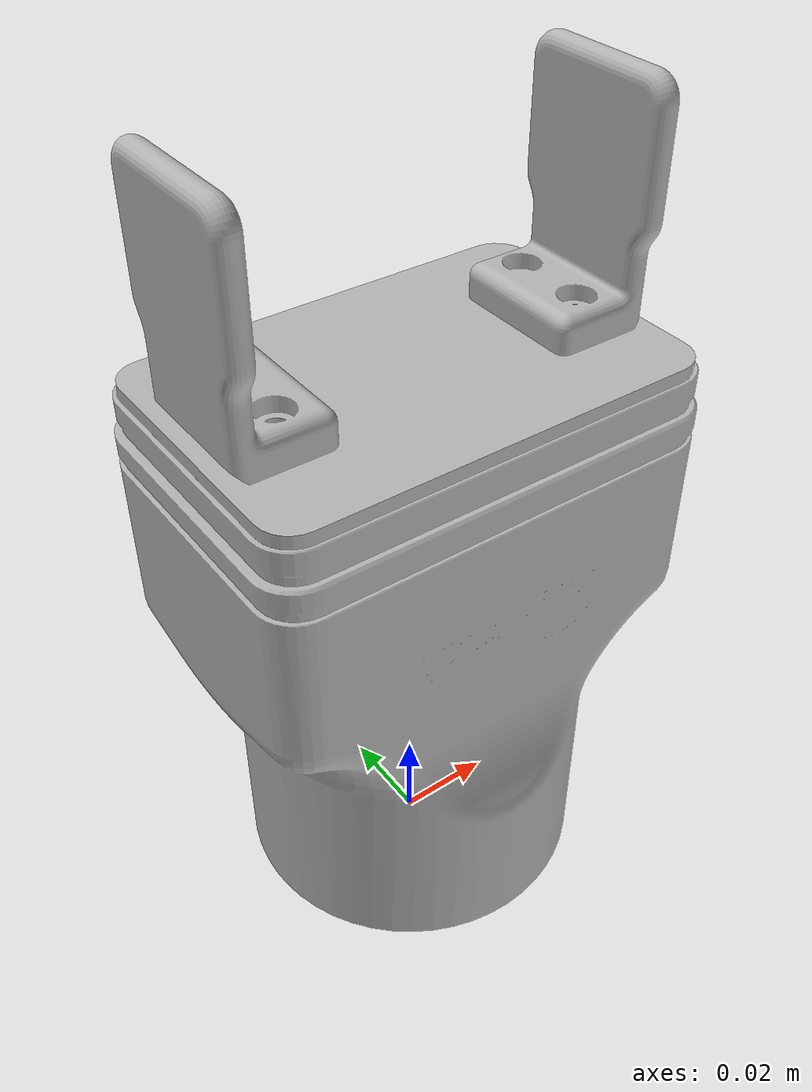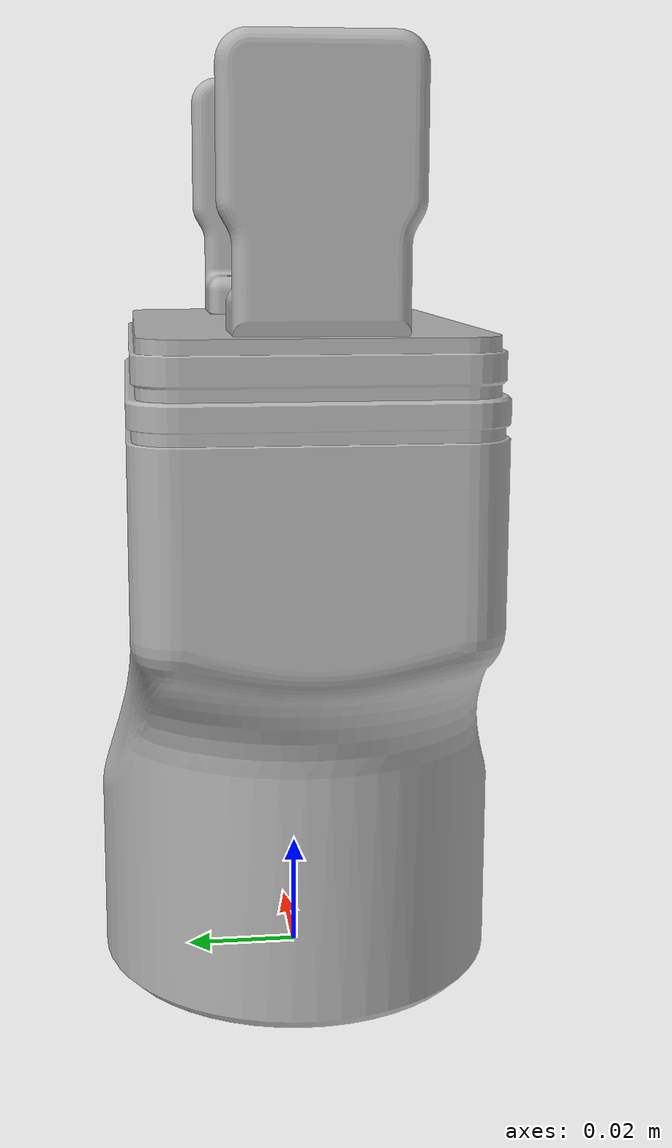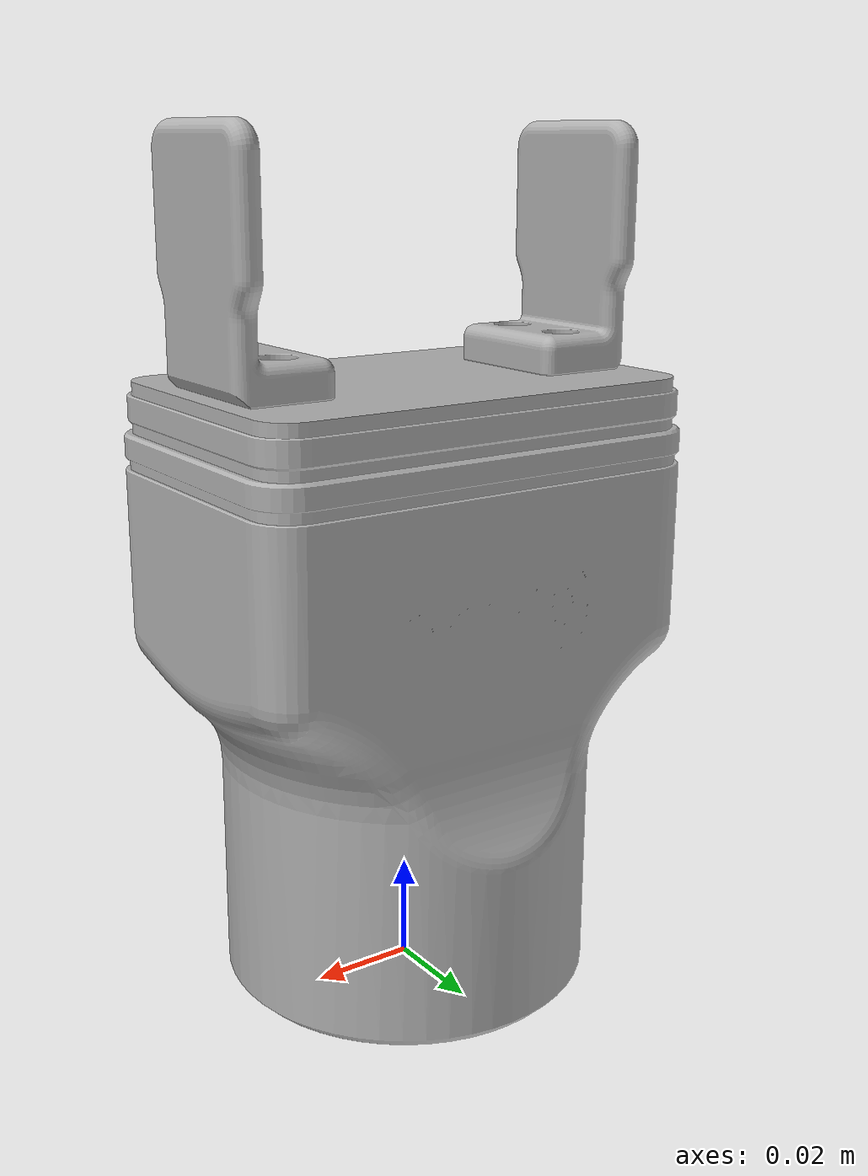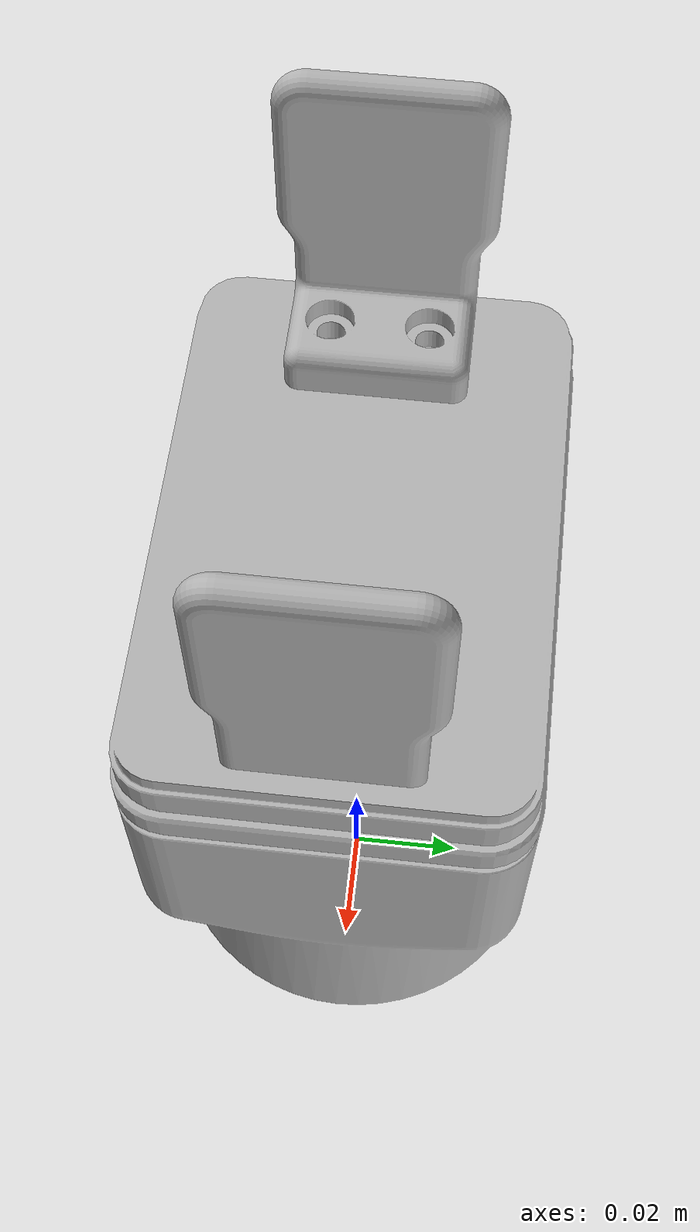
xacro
<?xml version="1.0" ?>
<robot name="2fg7_outwards" xmlns:xacro="http://www.ros.org/wiki/xacro">
  <xacro:include filename="$(find onrobot_2fg7_description)/urdf/onrobot_2fg7.xacro" />
 <xacro:onrobot_2fg7_gripper prefix="" finger_configuration="outwards"/>

  <link name="world" />

  <joint name="world_joint" type="fixed">
    <parent link="world" />
    <child link = "base_link" />
    <origin xyz="0.0 0.0 0.0" rpy="0.0 0.0 0.0" />
  </joint>
  <xacro:include filename="$(find onrobot_2fg7_description)/urdf/gzplugin_grasp_fix.urdf.xacro"/>
  <xacro:include filename="$(find onrobot_2fg7_description)/urdf/mimic_fix.urdf.xacro"/>
  <xacro:gzplugin_grasp_fix/>
  <xacro:mimic_fix/>

</robot>

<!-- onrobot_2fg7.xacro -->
<robot name="2fg7_outwards" xmlns:xacro="http://www.ros.org/wiki/xacro">

<xacro:include filename="$(find onrobot_2fg7_description)/urdf/materials.xacro" />
<xacro:include filename="$(find onrobot_2fg7_description)/urdf/onrobot_2fg7.trans.xacro" />
<xacro:include filename="$(find onrobot_2fg7_description)/urdf/onrobot_2fg7.gazebo" />
<xacro:gripper_transmission/>
<xacro:gazebo_control is_control_on="false" />

<xacro:macro name="onrobot_2fg7_gripper" params="prefix finger_configuration=outwards">

  <xacro:property name="config" value="${finger_configuration}"/>
  <xacro:if value="${config == 'outwards'}">
    <link name="${prefix}base_link">
      <inertial>
        <origin xyz="-4.898915958379213e-05 2.84756960271082e-06 0.06811082379774974" rpy="0 0 0"/>
        <mass value="1.2646523179240972"/>
        <inertia ixx="0.001504" iyy="0.001812" izz="0.001053" ixy="-0.0" iyz="0.0" ixz="-3e-06"/>
      </inertial>
      <visual>
        <origin xyz="0 0 0" rpy="0 0 0"/>
        <geometry>
          <mesh filename="package://onrobot_2fg7_description/meshes/base_link.stl" scale="0.001 0.001 0.001"/>
        </geometry>
        <material name="silver"/>
      </visual>
      <collision>
        <origin xyz="0 0 0" rpy="0 0 0"/>
        <geometry>
          <mesh filename="package://onrobot_2fg7_description/meshes/base_link.stl" scale="0.001 0.001 0.001"/>
        </geometry>
      </collision>
    </link>

    <link name="${prefix}right_finger_link">
      <inertial>
        <origin xyz="0.017874296677847158 0.02949104051991925 0.01523421548622829" rpy="0 0 0"/>
        <mass value="0.023219383355922288"/>
        <inertia ixx="6e-06" iyy="5e-06" izz="2e-06" ixy="-0.0" iyz="-0.0" ixz="1e-06"/>
      </inertial>
      <visual>
        <origin xyz="0.054361 0.029494 -0.12005" rpy="0 0 0"/>
        <geometry>
          <mesh filename="package://onrobot_2fg7_description/meshes/right_finger_link.stl" scale="0.001 0.001 0.001"/>
        </geometry>
        <material name="silver"/>
      </visual>
      <collision name="right_finger_collision">
        <origin xyz="0.054361 0.029494 -0.12005" rpy="0 0 0"/>
        <geometry>
          <mesh filename="package://onrobot_2fg7_description/meshes/right_finger_link.stl" scale="0.001 0.001 0.001"/>
        </geometry>
      </collision>
    </link>

    <link name="${prefix}left_finger_link">
      <inertial>
        <origin xyz="0.004247703322119739 0.029496959480080673 0.015234215486237948" rpy="0 0 0"/>
        <mass value="0.023219383355922288"/>
        <inertia ixx="6e-06" iyy="5e-06" izz="2e-06" ixy="-0.0" iyz="0.0" ixz="-1e-06"/>
      </inertial>
      <visual>
        <origin xyz="-0.032239 0.029494 -0.12005" rpy="0 0 0"/>
        <geometry>
          <mesh filename="package://onrobot_2fg7_description/meshes/left_finger_link.stl" scale="0.001 0.001 0.001"/>
        </geometry>
        <material name="silver"/>
      </visual>
      <collision name="left_finger_collision">
        <origin xyz="-0.032239 0.029494 -0.12005" rpy="0 0 0"/>
        <geometry>
          <mesh filename="package://onrobot_2fg7_description/meshes/left_finger_link.stl" scale="0.001 0.001 0.001"/>
        </geometry>
      </collision>
    </link>

    <joint name="left_finger_joint" type="prismatic">
      <origin xyz="0.032239 -0.029494 0.12005" rpy="0 0 0"/>
      <parent link="${prefix}base_link"/>
      <child link="${prefix}left_finger_link"/>
      <axis xyz="-1.0 0.0 0.0"/>
      <limit lower="0.0" upper="0.019" effort="140" velocity="0.45"/> <!-- total 0.38 -->
    </joint>

    <joint name="right_finger_joint" type="prismatic">
      <origin xyz="-0.054361 -0.029494 0.12005" rpy="0 0 0"/>
      <parent link="${prefix}base_link"/>
      <child link="${prefix}right_finger_link"/>
      <axis xyz="1.0 0.0 0.0"/>
      <limit lower="-0.019" upper="0.019" effort="140" velocity="0.45"/>
      <mimic joint="left_finger_joint" multiplier="1.0"/>
    </joint>
  </xacro:if>

   <xacro:if value="${config == 'inwards'}">

    <link name="${prefix}base_link">
      <inertial>
        <origin xyz="-4.8989159583623376e-05 2.847569602502098e-06 0.06811082379775064" rpy="0 0 0"/>
        <mass value="1.2646523179240972"/>
        <inertia ixx="0.001504" iyy="0.001812" izz="0.001053" ixy="-0.0" iyz="0.0" ixz="-3e-06"/>
      </inertial>
      <visual>
        <origin xyz="0 0 0" rpy="0 0 0"/>
        <geometry>
          <mesh filename="package://onrobot_2fg7_description/meshes/base_link.stl" scale="0.001 0.001 0.001"/>
        </geometry>
        <material name="silver"/>
      </visual>
      <collision>
        <origin xyz="0 0 0" rpy="0 0 0"/>
        <geometry>
          <mesh filename="package://onrobot_2fg7_description/meshes/base_link.stl" scale="0.001 0.001 0.001"/>
        </geometry>
      </collision>
    </link>

    <link name="${prefix}right_finger_link">
      <inertial>
        <origin xyz="0.029847703322119633 0.029496959480087837 0.015234215486232036" rpy="0 0 0"/>
        <mass value="0.023219383355922288"/>
        <inertia ixx="6e-06" iyy="5e-06" izz="2e-06" ixy="-0.0" iyz="0.0" ixz="-1e-06"/>
      </inertial>
      <visual>
        <origin xyz="0.054361 0.029494 -0.12005" rpy="0 0 0"/>
        <geometry>
          <mesh filename="package://onrobot_2fg7_description/meshes/inwards/right_finger_link.stl" scale="0.001 0.001 0.001"/>
        </geometry>
        <material name="silver"/>
      </visual>
      <collision>
        <origin xyz="0.054361 0.029494 -0.12005" rpy="0 0 0"/>
        <geometry>
          <mesh filename="package://onrobot_2fg7_description/meshes/inwards/right_finger_link.stl" scale="0.001 0.001 0.001"/>
        </geometry>
      </collision>
    </link>

    <link name="${prefix}left_finger_link">
      <inertial>
        <origin xyz="-0.007725703322151688 0.029491040519911117 0.015234215486238503" rpy="0 0 0"/>
        <mass value="0.023219383355922288"/>
        <inertia ixx="6e-06" iyy="5e-06" izz="2e-06" ixy="-0.0" iyz="-0.0" ixz="1e-06"/>
      </inertial>
      <visual>
        <origin xyz="-0.032239 0.029494 -0.12005" rpy="0 0 0"/>
        <geometry>
          <mesh filename="package://onrobot_2fg7_description/meshes/inwards/left_finger_link.stl" scale="0.001 0.001 0.001"/>
        </geometry>
        <material name="silver"/>
      </visual>
      <collision>
        <origin xyz="-0.032239 0.029494 -0.12005" rpy="0 0 0"/>
        <geometry>
          <mesh filename="package://onrobot_2fg7_description/meshes/inwards/left_finger_link.stl" scale="0.001 0.001 0.001"/>
        </geometry>
      </collision>
    </link>

    <joint name="left_finger_joint" type="prismatic">
      <origin xyz="0.032239 -0.029494 0.12005" rpy="0 0 0"/>
      <parent link="${prefix}base_link"/>
      <child link="${prefix}left_finger_link"/>
      <axis xyz="-1.0 0.0 0.0"/>
      <limit upper="0.0" lower="0.019" effort="100" velocity="0.45"/>
    </joint>

    <joint name="right_finger_joint" type="prismatic">
      <origin xyz="-0.054361 -0.029494 0.12005" rpy="0 0 0"/>
      <parent link="${prefix}base_link"/>
      <child link="${prefix}right_finger_link"/>
      <axis xyz="1.0 0.0 0.0"/>
      <limit lower="-0.019" upper="0.019" effort="100" velocity="0.45"/>
      <mimic joint="left_finger_joint" multiplier="1.0"/>
    </joint>

   </xacro:if>
 </xacro:macro>

</robot>

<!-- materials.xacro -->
<robot name="2FG7_outwards" xmlns:xacro="http://www.ros.org/wiki/xacro" >

<material name="silver">
  <color rgba="0.700 0.700 0.700 1.000"/>
</material>

</robot>

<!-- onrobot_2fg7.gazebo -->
<robot name="2FG7_outwards" xmlns:xacro="http://www.ros.org/wiki/xacro" >

  <xacro:property name="body_color" value="Gazebo/Grey" />

  <xacro:macro name="gazebo_control" params="is_control_on">

    <xacro:property name="control_bool" value="${is_control_on}"/>

    <xacro:if value="${control_bool}">
      <gazebo>
          <plugin name="gazebo_ros_control" filename="libgazebo_ros_control.so">
              <robotNamespace>/</robotNamespace>
          </plugin>
      </gazebo>
    </xacro:if>
  </xacro:macro>

  <gazebo reference="gripper_base_link">
    <material>${body_color}</material>
    <implicitSpringDamper>1</implicitSpringDamper>
    <mu1>0.2</mu1>
    <mu2>0.2</mu2>
    <kp>100000000.0</kp>
    <kd>1.0</kd>
    <selfCollide>true</selfCollide>
    <gravity>true</gravity>
  </gazebo>

  <gazebo reference="right_finger_link">
    <material>${body_color}</material>
    <implicitSpringDamper>1</implicitSpringDamper>
    <mu1>0.2</mu1>
    <mu2>0.2</mu2>
    <kp>100000000.0</kp>
    <kd>1.0</kd>
    <selfCollide>true</selfCollide>
  </gazebo>

  <gazebo reference="left_finger_link">
    <material>${body_color}</material>
    <implicitSpringDamper>1</implicitSpringDamper>
    <mu1>0.2</mu1>
    <mu2>0.2</mu2>
    <kp>100000000.0</kp>
    <kd>1.0</kd>
    <selfCollide>true</selfCollide>
  </gazebo>

</robot>
